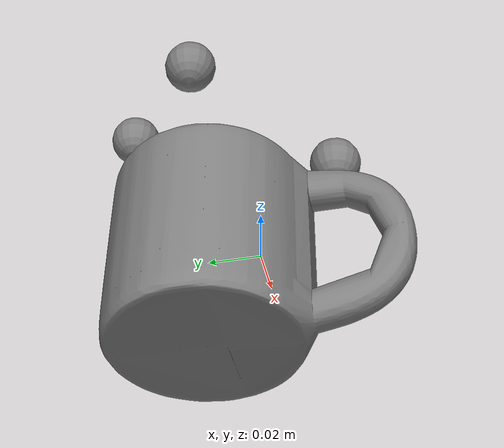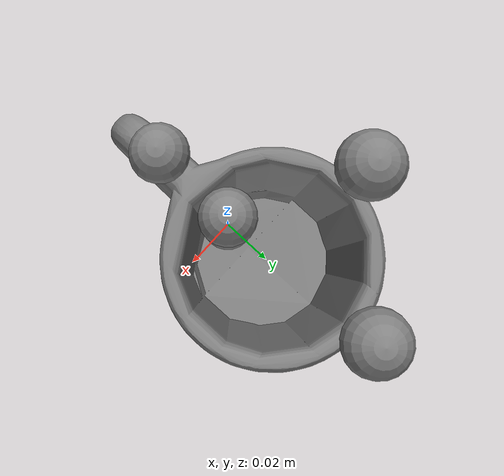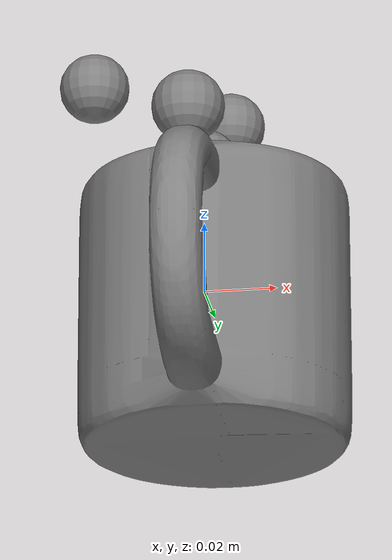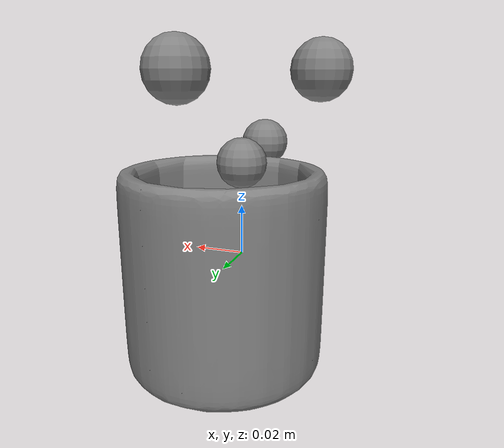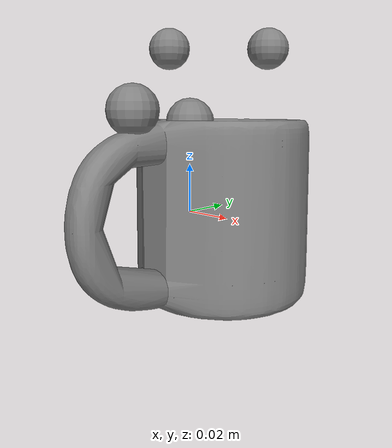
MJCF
<mujoco model="039_mug_3">
  <asset>
    <mesh name="039_mug_collision_3" file="039_mug_3.stl" scale="0.06 0.06 0.06"/>
  </asset>

  <worldbody>
<body name="039_mug_3">
  <geom name="039_mug_collision_3" type="mesh" mesh="039_mug_collision_3" />
  <site name="039_mug_3_keypoints_0" pos="0.0 0.05400552 0.07232832" size="0.01"/>
  <site name="039_mug_3_keypoints_1" pos="-0.034779 0.02101548 0.07231836" size="0.01"/>
  <site name="039_mug_3_keypoints_2" pos="0.0 -0.02997816 0.042312" size="0.01"/>
  <site name="039_mug_3_keypoints_3" pos="0.0 0.0 0.0" size="0.01"/>
  <site name="039_mug_3_keypoints_4" pos="0.0 1.134e-05 0.0375225" size="0.01"/>
</body>
  </worldbody>
</mujoco>
